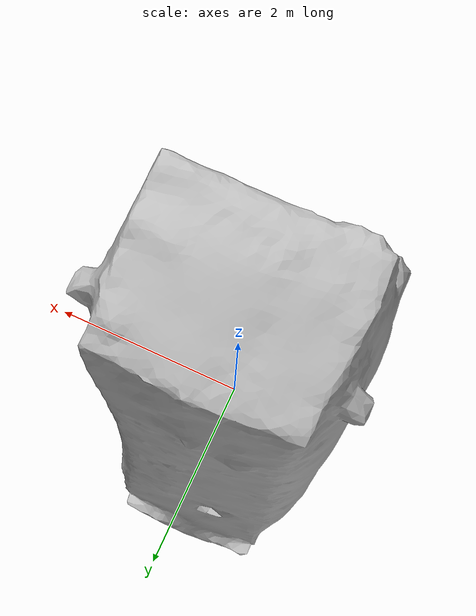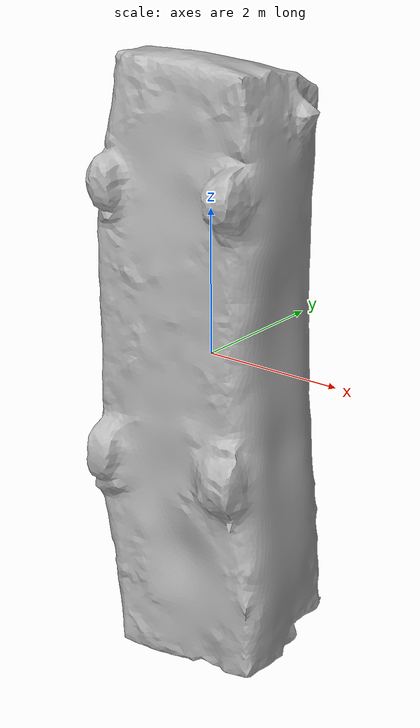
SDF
<?xml version="1.0" ?>
<sdf version="1.6">
  <model name="kare-bus">
    <static>true</static>
    <link name="link">
      <collision name="collision">
        <geometry>
          <mesh>
            <scale>8 8 8</scale>
            <uri>model://kare-bus/meshes/kare-bus.obj</uri>
          </mesh>
        </geometry>
      </collision>
      <visual name="visual">
        <geometry>
          <mesh>
            <scale>8 8 8</scale>
            <uri>model://kare-bus/meshes/kare-bus.obj</uri>
          </mesh>
        </geometry>
      </visual>
    </link>
  </model>
</sdf>
